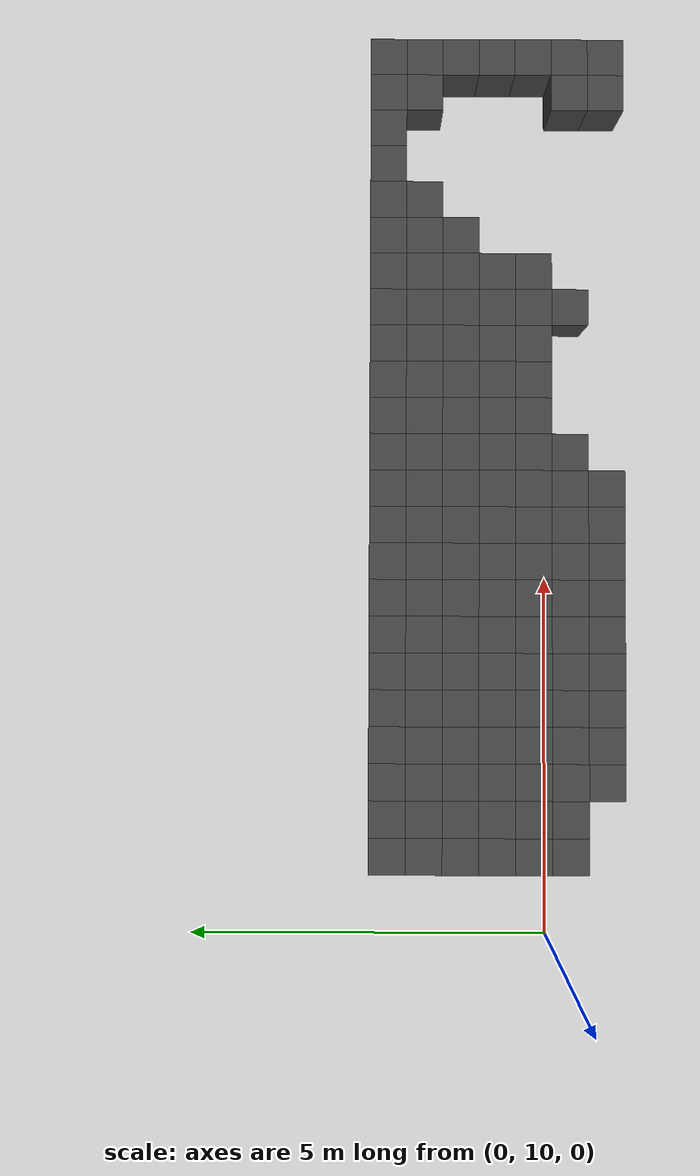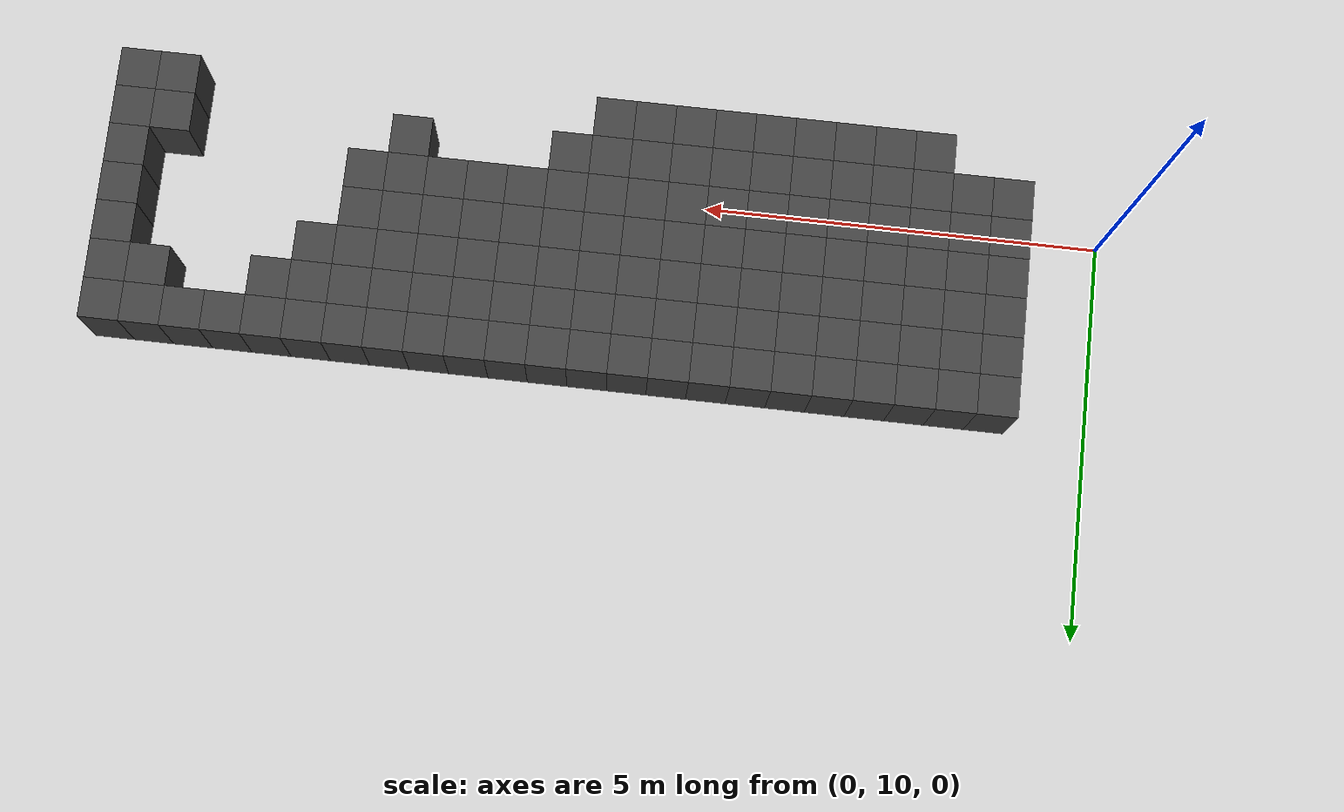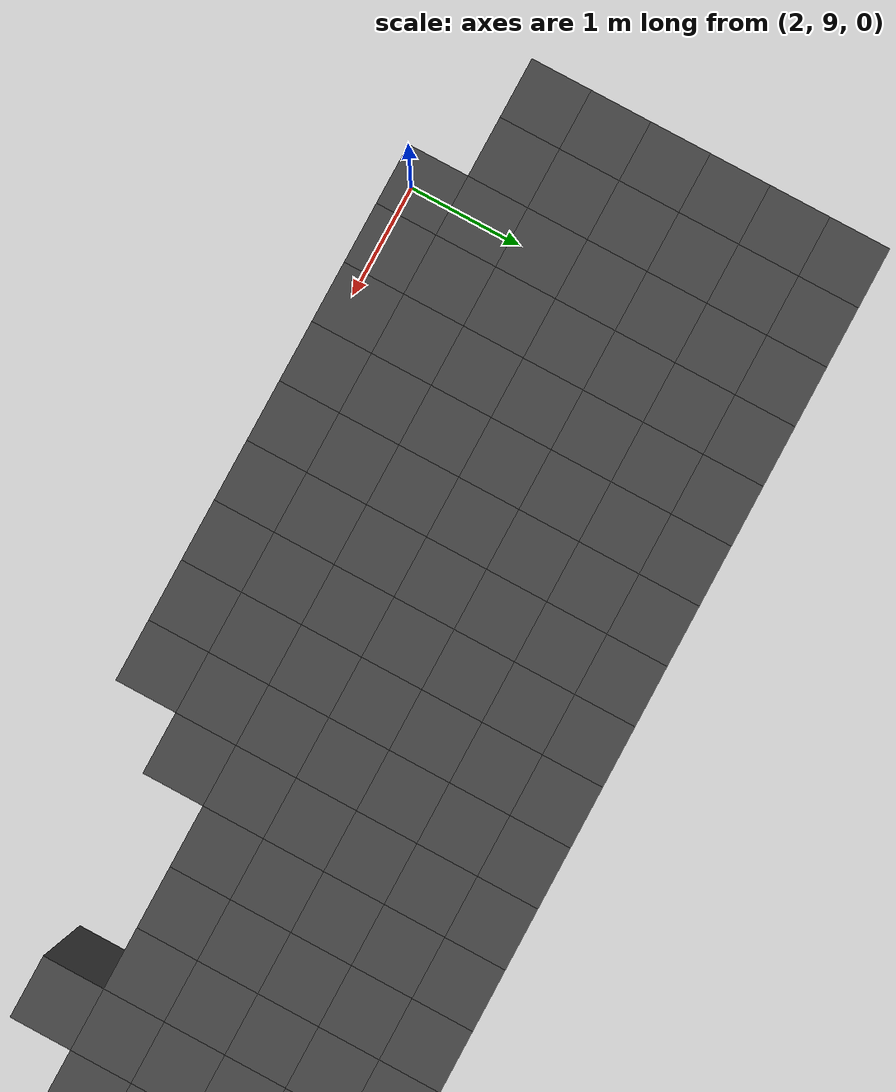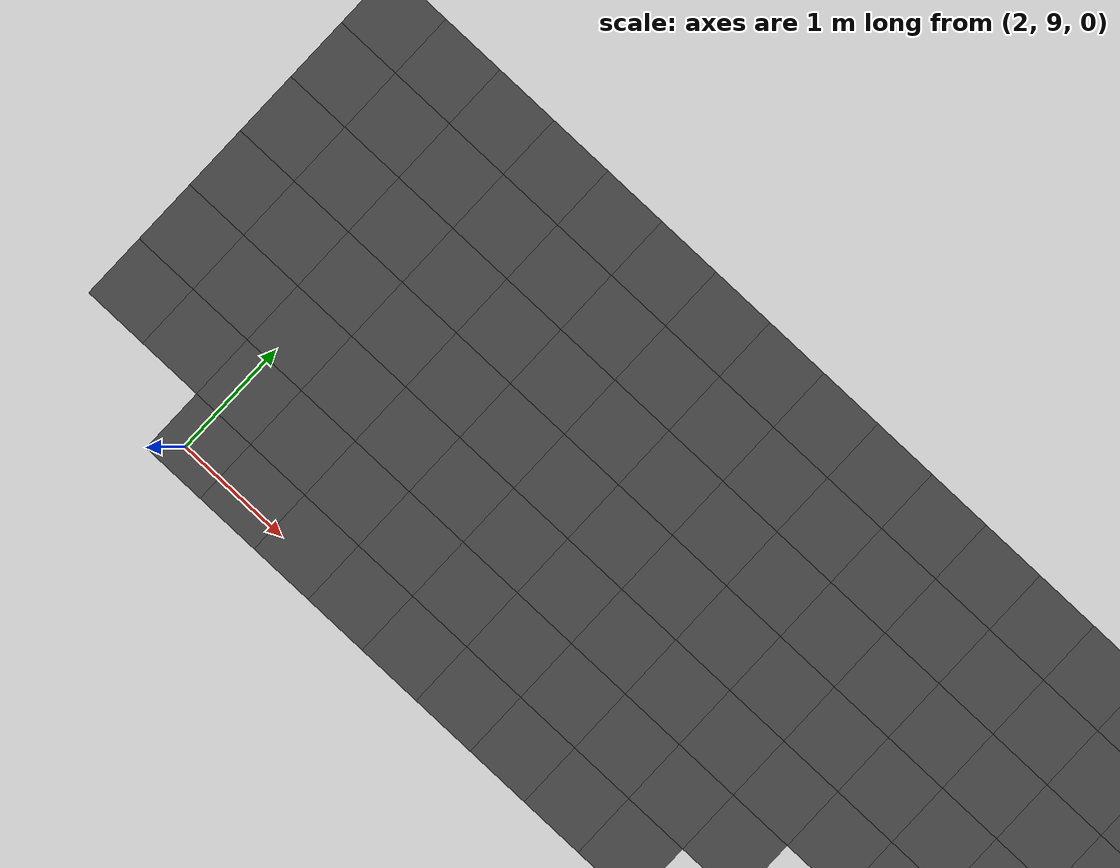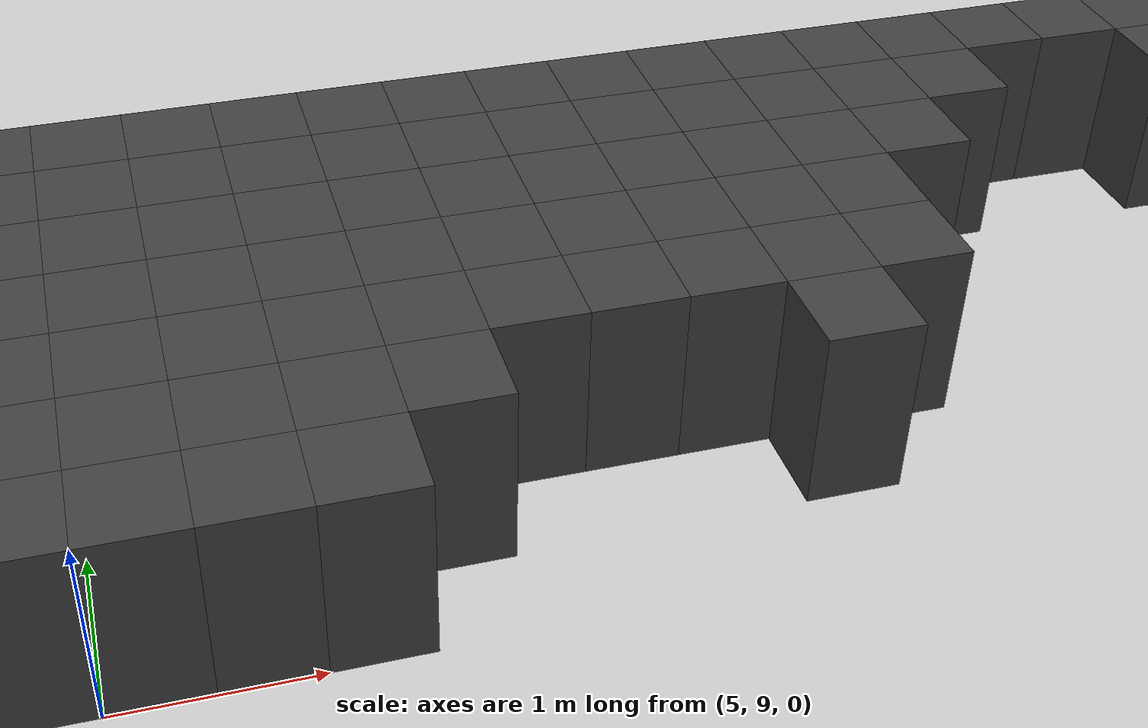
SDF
<sdf version="1.7">
 <world name="map_9687">
  <model name="ground_plane">
   <static>true</static>
   <link name="link">
    <collision name="collision">
     <geometry><plane><normal>0 0 1</normal><size>200 200</size></plane></geometry>
    </collision>
    <visual name="visual">
     <geometry><plane><normal>0 0 1</normal><size>200 200</size></plane></geometry>
     <material><ambient>0.8 0.8 0.8 1</ambient><diffuse>0.8 0.8 0.8 1</diffuse></material>
    </visual>
   </link>
  </model>
  <model name="maze_environment">
   <static>true</static>
   <link name="wall_27">
    <pose>1.250 12.250 0.500 0 0 0</pose>
    <collision name="col"><geometry><box><size>0.5 0.5 1.0</size></box></geometry></collision>
    <visual name="vis">
     <geometry><box><size>0.5 0.5 1.0</size></box></geometry>
     <material><ambient>0.15 0.15 0.15 1</ambient><diffuse>0.25 0.25 0.25 1</diffuse></material>
    </visual>
   </link>
   <link name="wall_28">
    <pose>1.750 12.250 0.500 0 0 0</pose>
    <collision name="col"><geometry><box><size>0.5 0.5 1.0</size></box></geometry></collision>
    <visual name="vis">
     <geometry><box><size>0.5 0.5 1.0</size></box></geometry>
     <material><ambient>0.15 0.15 0.15 1</ambient><diffuse>0.25 0.25 0.25 1</diffuse></material>
    </visual>
   </link>
   <link name="wall_29">
    <pose>2.250 12.250 0.500 0 0 0</pose>
    <collision name="col"><geometry><box><size>0.5 0.5 1.0</size></box></geometry></collision>
    <visual name="vis">
     <geometry><box><size>0.5 0.5 1.0</size></box></geometry>
     <material><ambient>0.15 0.15 0.15 1</ambient><diffuse>0.25 0.25 0.25 1</diffuse></material>
    </visual>
   </link>
   <link name="wall_30">
    <pose>2.750 12.250 0.500 0 0 0</pose>
    <collision name="col"><geometry><box><size>0.5 0.5 1.0</size></box></geometry></collision>
    <visual name="vis">
     <geometry><box><size>0.5 0.5 1.0</size></box></geometry>
     <material><ambient>0.15 0.15 0.15 1</ambient><diffuse>0.25 0.25 0.25 1</diffuse></material>
    </visual>
   </link>
   <link name="wall_31">
    <pose>3.250 12.250 0.500 0 0 0</pose>
    <collision name="col"><geometry><box><size>0.5 0.5 1.0</size></box></geometry></collision>
    <visual name="vis">
     <geometry><box><size>0.5 0.5 1.0</size></box></geometry>
     <material><ambient>0.15 0.15 0.15 1</ambient><diffuse>0.25 0.25 0.25 1</diffuse></material>
    </visual>
   </link>
   <link name="wall_32">
    <pose>3.750 12.250 0.500 0 0 0</pose>
    <collision name="col"><geometry><box><size>0.5 0.5 1.0</size></box></geometry></collision>
    <visual name="vis">
     <geometry><box><size>0.5 0.5 1.0</size></box></geometry>
     <material><ambient>0.15 0.15 0.15 1</ambient><diffuse>0.25 0.25 0.25 1</diffuse></material>
    </visual>
   </link>
   <link name="wall_33">
    <pose>4.250 12.250 0.500 0 0 0</pose>
    <collision name="col"><geometry><box><size>0.5 0.5 1.0</size></box></geometry></collision>
    <visual name="vis">
     <geometry><box><size>0.5 0.5 1.0</size></box></geometry>
     <material><ambient>0.15 0.15 0.15 1</ambient><diffuse>0.25 0.25 0.25 1</diffuse></material>
    </visual>
   </link>
   <link name="wall_34">
    <pose>4.750 12.250 0.500 0 0 0</pose>
    <collision name="col"><geometry><box><size>0.5 0.5 1.0</size></box></geometry></collision>
    <visual name="vis">
     <geometry><box><size>0.5 0.5 1.0</size></box></geometry>
     <material><ambient>0.15 0.15 0.15 1</ambient><diffuse>0.25 0.25 0.25 1</diffuse></material>
    </visual>
   </link>
   <link name="wall_35">
    <pose>5.250 12.250 0.500 0 0 0</pose>
    <collision name="col"><geometry><box><size>0.5 0.5 1.0</size></box></geometry></collision>
    <visual name="vis">
     <geometry><box><size>0.5 0.5 1.0</size></box></geometry>
     <material><ambient>0.15 0.15 0.15 1</ambient><diffuse>0.25 0.25 0.25 1</diffuse></material>
    </visual>
   </link>
   <link name="wall_36">
    <pose>5.750 12.250 0.500 0 0 0</pose>
    <collision name="col"><geometry><box><size>0.5 0.5 1.0</size></box></geometry></collision>
    <visual name="vis">
     <geometry><box><size>0.5 0.5 1.0</size></box></geometry>
     <material><ambient>0.15 0.15 0.15 1</ambient><diffuse>0.25 0.25 0.25 1</diffuse></material>
    </visual>
   </link>
   <link name="wall_37">
    <pose>6.250 12.250 0.500 0 0 0</pose>
    <collision name="col"><geometry><box><size>0.5 0.5 1.0</size></box></geometry></collision>
    <visual name="vis">
     <geometry><box><size>0.5 0.5 1.0</size></box></geometry>
     <material><ambient>0.15 0.15 0.15 1</ambient><diffuse>0.25 0.25 0.25 1</diffuse></material>
    </visual>
   </link>
   <link name="wall_38">
    <pose>6.750 12.250 0.500 0 0 0</pose>
    <collision name="col"><geometry><box><size>0.5 0.5 1.0</size></box></geometry></collision>
    <visual name="vis">
     <geometry><box><size>0.5 0.5 1.0</size></box></geometry>
     <material><ambient>0.15 0.15 0.15 1</ambient><diffuse>0.25 0.25 0.25 1</diffuse></material>
    </visual>
   </link>
   <link name="wall_39">
    <pose>7.250 12.250 0.500 0 0 0</pose>
    <collision name="col"><geometry><box><size>0.5 0.5 1.0</size></box></geometry></collision>
    <visual name="vis">
     <geometry><box><size>0.5 0.5 1.0</size></box></geometry>
     <material><ambient>0.15 0.15 0.15 1</ambient><diffuse>0.25 0.25 0.25 1</diffuse></material>
    </visual>
   </link>
   <link name="wall_40">
    <pose>7.750 12.250 0.500 0 0 0</pose>
    <collision name="col"><geometry><box><size>0.5 0.5 1.0</size></box></geometry></collision>
    <visual name="vis">
     <geometry><box><size>0.5 0.5 1.0</size></box></geometry>
     <material><ambient>0.15 0.15 0.15 1</ambient><diffuse>0.25 0.25 0.25 1</diffuse></material>
    </visual>
   </link>
   <link name="wall_41">
    <pose>8.250 12.250 0.500 0 0 0</pose>
    <collision name="col"><geometry><box><size>0.5 0.5 1.0</size></box></geometry></collision>
    <visual name="vis">
     <geometry><box><size>0.5 0.5 1.0</size></box></geometry>
     <material><ambient>0.15 0.15 0.15 1</ambient><diffuse>0.25 0.25 0.25 1</diffuse></material>
    </visual>
   </link>
   <link name="wall_42">
    <pose>8.750 12.250 0.500 0 0 0</pose>
    <collision name="col"><geometry><box><size>0.5 0.5 1.0</size></box></geometry></collision>
    <visual name="vis">
     <geometry><box><size>0.5 0.5 1.0</size></box></geometry>
     <material><ambient>0.15 0.15 0.15 1</ambient><diffuse>0.25 0.25 0.25 1</diffuse></material>
    </visual>
   </link>
   <link name="wall_43">
    <pose>9.250 12.250 0.500 0 0 0</pose>
    <collision name="col"><geometry><box><size>0.5 0.5 1.0</size></box></geometry></collision>
    <visual name="vis">
     <geometry><box><size>0.5 0.5 1.0</size></box></geometry>
     <material><ambient>0.15 0.15 0.15 1</ambient><diffuse>0.25 0.25 0.25 1</diffuse></material>
    </visual>
   </link>
   <link name="wall_44">
    <pose>9.750 12.250 0.500 0 0 0</pose>
    <collision name="col"><geometry><box><size>0.5 0.5 1.0</size></box></geometry></collision>
    <visual name="vis">
     <geometry><box><size>0.5 0.5 1.0</size></box></geometry>
     <material><ambient>0.15 0.15 0.15 1</ambient><diffuse>0.25 0.25 0.25 1</diffuse></material>
    </visual>
   </link>
   <link name="wall_45">
    <pose>10.250 12.250 0.500 0 0 0</pose>
    <collision name="col"><geometry><box><size>0.5 0.5 1.0</size></box></geometry></collision>
    <visual name="vis">
     <geometry><box><size>0.5 0.5 1.0</size></box></geometry>
     <material><ambient>0.15 0.15 0.15 1</ambient><diffuse>0.25 0.25 0.25 1</diffuse></material>
    </visual>
   </link>
   <link name="wall_46">
    <pose>10.750 12.250 0.500 0 0 0</pose>
    <collision name="col"><geometry><box><size>0.5 0.5 1.0</size></box></geometry></collision>
    <visual name="vis">
     <geometry><box><size>0.5 0.5 1.0</size></box></geometry>
     <material><ambient>0.15 0.15 0.15 1</ambient><diffuse>0.25 0.25 0.25 1</diffuse></material>
    </visual>
   </link>
   <link name="wall_47">
    <pose>11.250 12.250 0.500 0 0 0</pose>
    <collision name="col"><geometry><box><size>0.5 0.5 1.0</size></box></geometry></collision>
    <visual name="vis">
     <geometry><box><size>0.5 0.5 1.0</size></box></geometry>
     <material><ambient>0.15 0.15 0.15 1</ambient><diffuse>0.25 0.25 0.25 1</diffuse></material>
    </visual>
   </link>
   <link name="wall_48">
    <pose>11.750 12.250 0.500 0 0 0</pose>
    <collision name="col"><geometry><box><size>0.5 0.5 1.0</size></box></geometry></collision>
    <visual name="vis">
     <geometry><box><size>0.5 0.5 1.0</size></box></geometry>
     <material><ambient>0.15 0.15 0.15 1</ambient><diffuse>0.25 0.25 0.25 1</diffuse></material>
    </visual>
   </link>
   <link name="wall_49">
    <pose>12.250 12.250 0.500 0 0 0</pose>
    <collision name="col"><geometry><box><size>0.5 0.5 1.0</size></box></geometry></collision>
    <visual name="vis">
     <geometry><box><size>0.5 0.5 1.0</size></box></geometry>
     <material><ambient>0.15 0.15 0.15 1</ambient><diffuse>0.25 0.25 0.25 1</diffuse></material>
    </visual>
   </link>
   <link name="wall_62">
    <pose>1.250 11.750 0.500 0 0 0</pose>
    <collision name="col"><geometry><box><size>0.5 0.5 1.0</size></box></geometry></collision>
    <visual name="vis">
     <geometry><box><size>0.5 0.5 1.0</size></box></geometry>
     <material><ambient>0.15 0.15 0.15 1</ambient><diffuse>0.25 0.25 0.25 1</diffuse></material>
    </visual>
   </link>
   <link name="wall_63">
    <pose>1.750 11.750 0.500 0 0 0</pose>
    <collision name="col"><geometry><box><size>0.5 0.5 1.0</size></box></geometry></collision>
    <visual name="vis">
     <geometry><box><size>0.5 0.5 1.0</size></box></geometry>
     <material><ambient>0.15 0.15 0.15 1</ambient><diffuse>0.25 0.25 0.25 1</diffuse></material>
    </visual>
   </link>
   <link name="wall_64">
    <pose>2.250 11.750 0.500 0 0 0</pose>
    <collision name="col"><geometry><box><size>0.5 0.5 1.0</size></box></geometry></collision>
    <visual name="vis">
     <geometry><box><size>0.5 0.5 1.0</size></box></geometry>
     <material><ambient>0.15 0.15 0.15 1</ambient><diffuse>0.25 0.25 0.25 1</diffuse></material>
    </visual>
   </link>
   <link name="wall_65">
    <pose>2.750 11.750 0.500 0 0 0</pose>
    <collision name="col"><geometry><box><size>0.5 0.5 1.0</size></box></geometry></collision>
    <visual name="vis">
     <geometry><box><size>0.5 0.5 1.0</size></box></geometry>
     <material><ambient>0.15 0.15 0.15 1</ambient><diffuse>0.25 0.25 0.25 1</diffuse></material>
    </visual>
   </link>
   <link name="wall_66">
    <pose>3.250 11.750 0.500 0 0 0</pose>
    <collision name="col"><geometry><box><size>0.5 0.5 1.0</size></box></geometry></collision>
    <visual name="vis">
     <geometry><box><size>0.5 0.5 1.0</size></box></geometry>
     <material><ambient>0.15 0.15 0.15 1</ambient><diffuse>0.25 0.25 0.25 1</diffuse></material>
    </visual>
   </link>
   <link name="wall_67">
    <pose>3.750 11.750 0.500 0 0 0</pose>
    <collision name="col"><geometry><box><size>0.5 0.5 1.0</size></box></geometry></collision>
    <visual name="vis">
     <geometry><box><size>0.5 0.5 1.0</size></box></geometry>
     <material><ambient>0.15 0.15 0.15 1</ambient><diffuse>0.25 0.25 0.25 1</diffuse></material>
    </visual>
   </link>
   <link name="wall_68">
    <pose>4.250 11.750 0.500 0 0 0</pose>
    <collision name="col"><geometry><box><size>0.5 0.5 1.0</size></box></geometry></collision>
    <visual name="vis">
     <geometry><box><size>0.5 0.5 1.0</size></box></geometry>
     <material><ambient>0.15 0.15 0.15 1</ambient><diffuse>0.25 0.25 0.25 1</diffuse></material>
    </visual>
   </link>
   <link name="wall_69">
    <pose>4.750 11.750 0.500 0 0 0</pose>
    <collision name="col"><geometry><box><size>0.5 0.5 1.0</size></box></geometry></collision>
    <visual name="vis">
     <geometry><box><size>0.5 0.5 1.0</size></box></geometry>
     <material><ambient>0.15 0.15 0.15 1</ambient><diffuse>0.25 0.25 0.25 1</diffuse></material>
    </visual>
   </link>
   <link name="wall_70">
    <pose>5.250 11.750 0.500 0 0 0</pose>
    <collision name="col"><geometry><box><size>0.5 0.5 1.0</size></box></geometry></collision>
    <visual name="vis">
     <geometry><box><size>0.5 0.5 1.0</size></box></geometry>
     <material><ambient>0.15 0.15 0.15 1</ambient><diffuse>0.25 0.25 0.25 1</diffuse></material>
    </visual>
   </link>
   <link name="wall_71">
    <pose>5.750 11.750 0.500 0 0 0</pose>
    <collision name="col"><geometry><box><size>0.5 0.5 1.0</size></box></geometry></collision>
    <visual name="vis">
     <geometry><box><size>0.5 0.5 1.0</size></box></geometry>
     <material><ambient>0.15 0.15 0.15 1</ambient><diffuse>0.25 0.25 0.25 1</diffuse></material>
    </visual>
   </link>
   <link name="wall_72">
    <pose>6.250 11.750 0.500 0 0 0</pose>
    <collision name="col"><geometry><box><size>0.5 0.5 1.0</size></box></geometry></collision>
    <visual name="vis">
     <geometry><box><size>0.5 0.5 1.0</size></box></geometry>
     <material><ambient>0.15 0.15 0.15 1</ambient><diffuse>0.25 0.25 0.25 1</diffuse></material>
    </visual>
   </link>
   <link name="wall_73">
    <pose>6.750 11.750 0.500 0 0 0</pose>
    <collision name="col"><geometry><box><size>0.5 0.5 1.0</size></box></geometry></collision>
    <visual name="vis">
     <geometry><box><size>0.5 0.5 1.0</size></box></geometry>
     <material><ambient>0.15 0.15 0.15 1</ambient><diffuse>0.25 0.25 0.25 1</diffuse></material>
    </visual>
   </link>
   <link name="wall_74">
    <pose>7.250 11.750 0.500 0 0 0</pose>
    <collision name="col"><geometry><box><size>0.5 0.5 1.0</size></box></geometry></collision>
    <visual name="vis">
     <geometry><box><size>0.5 0.5 1.0</size></box></geometry>
     <material><ambient>0.15 0.15 0.15 1</ambient><diffuse>0.25 0.25 0.25 1</diffuse></material>
    </visual>
   </link>
   <link name="wall_75">
    <pose>7.750 11.750 0.500 0 0 0</pose>
    <collision name="col"><geometry><box><size>0.5 0.5 1.0</size></box></geometry></collision>
    <visual name="vis">
     <geometry><box><size>0.5 0.5 1.0</size></box></geometry>
     <material><ambient>0.15 0.15 0.15 1</ambient><diffuse>0.25 0.25 0.25 1</diffuse></material>
    </visual>
   </link>
   <link name="wall_76">
    <pose>8.250 11.750 0.500 0 0 0</pose>
    <collision name="col"><geometry><box><size>0.5 0.5 1.0</size></box></geometry></collision>
    <visual name="vis">
     <geometry><box><size>0.5 0.5 1.0</size></box></geometry>
     <material><ambient>0.15 0.15 0.15 1</ambient><diffuse>0.25 0.25 0.25 1</diffuse></material>
    </visual>
   </link>
   <link name="wall_77">
    <pose>8.750 11.750 0.500 0 0 0</pose>
    <collision name="col"><geometry><box><size>0.5 0.5 1.0</size></box></geometry></collision>
    <visual name="vis">
     <geometry><box><size>0.5 0.5 1.0</size></box></geometry>
     <material><ambient>0.15 0.15 0.15 1</ambient><diffuse>0.25 0.25 0.25 1</diffuse></material>
    </visual>
   </link>
   <link name="wall_78">
    <pose>9.250 11.750 0.500 0 0 0</pose>
    <collision name="col"><geometry><box><size>0.5 0.5 1.0</size></box></geometry></collision>
    <visual name="vis">
     <geometry><box><size>0.5 0.5 1.0</size></box></geometry>
     <material><ambient>0.15 0.15 0.15 1</ambient><diffuse>0.25 0.25 0.25 1</diffuse></material>
    </visual>
   </link>
   <link name="wall_79">
    <pose>9.750 11.750 0.500 0 0 0</pose>
    <collision name="col"><geometry><box><size>0.5 0.5 1.0</size></box></geometry></collision>
    <visual name="vis">
     <geometry><box><size>0.5 0.5 1.0</size></box></geometry>
     <material><ambient>0.15 0.15 0.15 1</ambient><diffuse>0.25 0.25 0.25 1</diffuse></material>
    </visual>
   </link>
   <link name="wall_80">
    <pose>10.250 11.750 0.500 0 0 0</pose>
    <collision name="col"><geometry><box><size>0.5 0.5 1.0</size></box></geometry></collision>
    <visual name="vis">
     <geometry><box><size>0.5 0.5 1.0</size></box></geometry>
     <material><ambient>0.15 0.15 0.15 1</ambient><diffuse>0.25 0.25 0.25 1</diffuse></material>
    </visual>
   </link>
   <link name="wall_81">
    <pose>11.750 11.750 0.500 0 0 0</pose>
    <collision name="col"><geometry><box><size>0.5 0.5 1.0</size></box></geometry></collision>
    <visual name="vis">
     <geometry><box><size>0.5 0.5 1.0</size></box></geometry>
     <material><ambient>0.15 0.15 0.15 1</ambient><diffuse>0.25 0.25 0.25 1</diffuse></material>
    </visual>
   </link>
   <link name="wall_82">
    <pose>12.250 11.750 0.500 0 0 0</pose>
    <collision name="col"><geometry><box><size>0.5 0.5 1.0</size></box></geometry></collision>
    <visual name="vis">
     <geometry><box><size>0.5 0.5 1.0</size></box></geometry>
     <material><ambient>0.15 0.15 0.15 1</ambient><diffuse>0.25 0.25 0.25 1</diffuse></material>
    </visual>
   </link>
   <link name="wall_90">
    <pose>1.250 11.250 0.500 0 0 0</pose>
    <collision name="col"><geometry><box><size>0.5 0.5 1.0</size></box></geometry></collision>
    <visual name="vis">
     <geometry><box><size>0.5 0.5 1.0</size></box></geometry>
     <material><ambient>0.15 0.15 0.15 1</ambient><diffuse>0.25 0.25 0.25 1</diffuse></material>
    </visual>
   </link>
   <link name="wall_91">
    <pose>1.750 11.250 0.500 0 0 0</pose>
    <collision name="col"><geometry><box><size>0.5 0.5 1.0</size></box></geometry></collision>
    <visual name="vis">
     <geometry><box><size>0.5 0.5 1.0</size></box></geometry>
     <material><ambient>0.15 0.15 0.15 1</ambient><diffuse>0.25 0.25 0.25 1</diffuse></material>
    </visual>
   </link>
   <link name="wall_92">
    <pose>2.250 11.250 0.500 0 0 0</pose>
    <collision name="col"><geometry><box><size>0.5 0.5 1.0</size></box></geometry></collision>
    <visual name="vis">
     <geometry><box><size>0.5 0.5 1.0</size></box></geometry>
     <material><ambient>0.15 0.15 0.15 1</ambient><diffuse>0.25 0.25 0.25 1</diffuse></material>
    </visual>
   </link>
   <link name="wall_93">
    <pose>2.750 11.250 0.500 0 0 0</pose>
    <collision name="col"><geometry><box><size>0.5 0.5 1.0</size></box></geometry></collision>
    <visual name="vis">
     <geometry><box><size>0.5 0.5 1.0</size></box></geometry>
     <material><ambient>0.15 0.15 0.15 1</ambient><diffuse>0.25 0.25 0.25 1</diffuse></material>
    </visual>
   </link>
   <link name="wall_94">
    <pose>3.250 11.250 0.500 0 0 0</pose>
    <collision name="col"><geometry><box><size>0.5 0.5 1.0</size></box></geometry></collision>
    <visual name="vis">
     <geometry><box><size>0.5 0.5 1.0</size></box></geometry>
     <material><ambient>0.15 0.15 0.15 1</ambient><diffuse>0.25 0.25 0.25 1</diffuse></material>
    </visual>
   </link>
   <link name="wall_95">
    <pose>3.750 11.250 0.500 0 0 0</pose>
    <collision name="col"><geometry><box><size>0.5 0.5 1.0</size></box></geometry></collision>
    <visual name="vis">
     <geometry><box><size>0.5 0.5 1.0</size></box></geometry>
     <material><ambient>0.15 0.15 0.15 1</ambient><diffuse>0.25 0.25 0.25 1</diffuse></material>
    </visual>
   </link>
   <link name="wall_96">
    <pose>4.250 11.250 0.500 0 0 0</pose>
    <collision name="col"><geometry><box><size>0.5 0.5 1.0</size></box></geometry></collision>
    <visual name="vis">
     <geometry><box><size>0.5 0.5 1.0</size></box></geometry>
     <material><ambient>0.15 0.15 0.15 1</ambient><diffuse>0.25 0.25 0.25 1</diffuse></material>
    </visual>
   </link>
   <link name="wall_97">
    <pose>4.750 11.250 0.500 0 0 0</pose>
    <collision name="col"><geometry><box><size>0.5 0.5 1.0</size></box></geometry></collision>
    <visual name="vis">
     <geometry><box><size>0.5 0.5 1.0</size></box></geometry>
     <material><ambient>0.15 0.15 0.15 1</ambient><diffuse>0.25 0.25 0.25 1</diffuse></material>
    </visual>
   </link>
   <link name="wall_98">
    <pose>5.250 11.250 0.500 0 0 0</pose>
    <collision name="col"><geometry><box><size>0.5 0.5 1.0</size></box></geometry></collision>
    <visual name="vis">
     <geometry><box><size>0.5 0.5 1.0</size></box></geometry>
     <material><ambient>0.15 0.15 0.15 1</ambient><diffuse>0.25 0.25 0.25 1</diffuse></material>
    </visual>
   </link>
   <link name="wall_99">
    <pose>5.750 11.250 0.500 0 0 0</pose>
    <collision name="col"><geometry><box><size>0.5 0.5 1.0</size></box></geometry></collision>
    <visual name="vis">
     <geometry><box><size>0.5 0.5 1.0</size></box></geometry>
     <material><ambient>0.15 0.15 0.15 1</ambient><diffuse>0.25 0.25 0.25 1</diffuse></material>
    </visual>
   </link>
   <link name="wall_100">
    <pose>6.250 11.250 0.500 0 0 0</pose>
    <collision name="col"><geometry><box><size>0.5 0.5 1.0</size></box></geometry></collision>
    <visual name="vis">
     <geometry><box><size>0.5 0.5 1.0</size></box></geometry>
     <material><ambient>0.15 0.15 0.15 1</ambient><diffuse>0.25 0.25 0.25 1</diffuse></material>
    </visual>
   </link>
   <link name="wall_101">
    <pose>6.750 11.250 0.500 0 0 0</pose>
    <collision name="col"><geometry><box><size>0.5 0.5 1.0</size></box></geometry></collision>
    <visual name="vis">
     <geometry><box><size>0.5 0.5 1.0</size></box></geometry>
     <material><ambient>0.15 0.15 0.15 1</ambient><diffuse>0.25 0.25 0.25 1</diffuse></material>
    </visual>
   </link>
   <link name="wall_102">
    <pose>7.250 11.250 0.500 0 0 0</pose>
    <collision name="col"><geometry><box><size>0.5 0.5 1.0</size></box></geometry></collision>
    <visual name="vis">
     <geometry><box><size>0.5 0.5 1.0</size></box></geometry>
     <material><ambient>0.15 0.15 0.15 1</ambient><diffuse>0.25 0.25 0.25 1</diffuse></material>
    </visual>
   </link>
   <link name="wall_103">
    <pose>7.750 11.250 0.500 0 0 0</pose>
    <collision name="col"><geometry><box><size>0.5 0.5 1.0</size></box></geometry></collision>
    <visual name="vis">
     <geometry><box><size>0.5 0.5 1.0</size></box></geometry>
     <material><ambient>0.15 0.15 0.15 1</ambient><diffuse>0.25 0.25 0.25 1</diffuse></material>
    </visual>
   </link>
   <link name="wall_104">
    <pose>8.250 11.250 0.500 0 0 0</pose>
    <collision name="col"><geometry><box><size>0.5 0.5 1.0</size></box></geometry></collision>
    <visual name="vis">
     <geometry><box><size>0.5 0.5 1.0</size></box></geometry>
     <material><ambient>0.15 0.15 0.15 1</ambient><diffuse>0.25 0.25 0.25 1</diffuse></material>
    </visual>
   </link>
   <link name="wall_105">
    <pose>8.750 11.250 0.500 0 0 0</pose>
    <collision name="col"><geometry><box><size>0.5 0.5 1.0</size></box></geometry></collision>
    <visual name="vis">
     <geometry><box><size>0.5 0.5 1.0</size></box></geometry>
     <material><ambient>0.15 0.15 0.15 1</ambient><diffuse>0.25 0.25 0.25 1</diffuse></material>
    </visual>
   </link>
   <link name="wall_106">
    <pose>9.250 11.250 0.500 0 0 0</pose>
    <collision name="col"><geometry><box><size>0.5 0.5 1.0</size></box></geometry></collision>
    <visual name="vis">
     <geometry><box><size>0.5 0.5 1.0</size></box></geometry>
     <material><ambient>0.15 0.15 0.15 1</ambient><diffuse>0.25 0.25 0.25 1</diffuse></material>
    </visual>
   </link>
   <link name="wall_107">
    <pose>9.750 11.250 0.500 0 0 0</pose>
    <collision name="col"><geometry><box><size>0.5 0.5 1.0</size></box></geometry></collision>
    <visual name="vis">
     <geometry><box><size>0.5 0.5 1.0</size></box></geometry>
     <material><ambient>0.15 0.15 0.15 1</ambient><diffuse>0.25 0.25 0.25 1</diffuse></material>
    </visual>
   </link>
   <link name="wall_108">
    <pose>12.250 11.250 0.500 0 0 0</pose>
    <collision name="col"><geometry><box><size>0.5 0.5 1.0</size></box></geometry></collision>
    <visual name="vis">
     <geometry><box><size>0.5 0.5 1.0</size></box></geometry>
     <material><ambient>0.15 0.15 0.15 1</ambient><diffuse>0.25 0.25 0.25 1</diffuse></material>
    </visual>
   </link>
   <link name="wall_113">
    <pose>1.250 10.750 0.500 0 0 0</pose>
    <collision name="col"><geometry><box><size>0.5 0.5 1.0</size></box></geometry></collision>
    <visual name="vis">
     <geometry><box><size>0.5 0.5 1.0</size></box></geometry>
     <material><ambient>0.15 0.15 0.15 1</ambient><diffuse>0.25 0.25 0.25 1</diffuse></material>
    </visual>
   </link>
   <link name="wall_114">
    <pose>1.750 10.750 0.500 0 0 0</pose>
    <collision name="col"><geometry><box><size>0.5 0.5 1.0</size></box></geometry></collision>
    <visual name="vis">
     <geometry><box><size>0.5 0.5 1.0</size></box></geometry>
     <material><ambient>0.15 0.15 0.15 1</ambient><diffuse>0.25 0.25 0.25 1</diffuse></material>
    </visual>
   </link>
   <link name="wall_115">
    <pose>2.250 10.750 0.500 0 0 0</pose>
    <collision name="col"><geometry><box><size>0.5 0.5 1.0</size></box></geometry></collision>
    <visual name="vis">
     <geometry><box><size>0.5 0.5 1.0</size></box></geometry>
     <material><ambient>0.15 0.15 0.15 1</ambient><diffuse>0.25 0.25 0.25 1</diffuse></material>
    </visual>
   </link>
   <link name="wall_116">
    <pose>2.750 10.750 0.500 0 0 0</pose>
    <collision name="col"><geometry><box><size>0.5 0.5 1.0</size></box></geometry></collision>
    <visual name="vis">
     <geometry><box><size>0.5 0.5 1.0</size></box></geometry>
     <material><ambient>0.15 0.15 0.15 1</ambient><diffuse>0.25 0.25 0.25 1</diffuse></material>
    </visual>
   </link>
   <link name="wall_117">
    <pose>3.250 10.750 0.500 0 0 0</pose>
    <collision name="col"><geometry><box><size>0.5 0.5 1.0</size></box></geometry></collision>
    <visual name="vis">
     <geometry><box><size>0.5 0.5 1.0</size></box></geometry>
     <material><ambient>0.15 0.15 0.15 1</ambient><diffuse>0.25 0.25 0.25 1</diffuse></material>
    </visual>
   </link>
   <link name="wall_118">
    <pose>3.750 10.750 0.500 0 0 0</pose>
    <collision name="col"><geometry><box><size>0.5 0.5 1.0</size></box></geometry></collision>
    <visual name="vis">
     <geometry><box><size>0.5 0.5 1.0</size></box></geometry>
     <material><ambient>0.15 0.15 0.15 1</ambient><diffuse>0.25 0.25 0.25 1</diffuse></material>
    </visual>
   </link>
   <link name="wall_119">
    <pose>4.250 10.750 0.500 0 0 0</pose>
    <collision name="col"><geometry><box><size>0.5 0.5 1.0</size></box></geometry></collision>
    <visual name="vis">
     <geometry><box><size>0.5 0.5 1.0</size></box></geometry>
     <material><ambient>0.15 0.15 0.15 1</ambient><diffuse>0.25 0.25 0.25 1</diffuse></material>
    </visual>
   </link>
   <link name="wall_120">
    <pose>4.750 10.750 0.500 0 0 0</pose>
    <collision name="col"><geometry><box><size>0.5 0.5 1.0</size></box></geometry></collision>
    <visual name="vis">
     <geometry><box><size>0.5 0.5 1.0</size></box></geometry>
     <material><ambient>0.15 0.15 0.15 1</ambient><diffuse>0.25 0.25 0.25 1</diffuse></material>
    </visual>
   </link>
   <link name="wall_121">
    <pose>5.250 10.750 0.500 0 0 0</pose>
    <collision name="col"><geometry><box><size>0.5 0.5 1.0</size></box></geometry></collision>
    <visual name="vis">
     <geometry><box><size>0.5 0.5 1.0</size></box></geometry>
     <material><ambient>0.15 0.15 0.15 1</ambient><diffuse>0.25 0.25 0.25 1</diffuse></material>
    </visual>
   </link>
   <link name="wall_122">
    <pose>5.750 10.750 0.500 0 0 0</pose>
    <collision name="col"><geometry><box><size>0.5 0.5 1.0</size></box></geometry></collision>
    <visual name="vis">
     <geometry><box><size>0.5 0.5 1.0</size></box></geometry>
     <material><ambient>0.15 0.15 0.15 1</ambient><diffuse>0.25 0.25 0.25 1</diffuse></material>
    </visual>
   </link>
   <link name="wall_123">
    <pose>6.250 10.750 0.500 0 0 0</pose>
    <collision name="col"><geometry><box><size>0.5 0.5 1.0</size></box></geometry></collision>
    <visual name="vis">
     <geometry><box><size>0.5 0.5 1.0</size></box></geometry>
     <material><ambient>0.15 0.15 0.15 1</ambient><diffuse>0.25 0.25 0.25 1</diffuse></material>
    </visual>
   </link>
   <link name="wall_124">
    <pose>6.750 10.750 0.500 0 0 0</pose>
    <collision name="col"><geometry><box><size>0.5 0.5 1.0</size></box></geometry></collision>
    <visual name="vis">
     <geometry><box><size>0.5 0.5 1.0</size></box></geometry>
     <material><ambient>0.15 0.15 0.15 1</ambient><diffuse>0.25 0.25 0.25 1</diffuse></material>
    </visual>
   </link>
   <link name="wall_125">
    <pose>7.250 10.750 0.500 0 0 0</pose>
    <collision name="col"><geometry><box><size>0.5 0.5 1.0</size></box></geometry></collision>
    <visual name="vis">
     <geometry><box><size>0.5 0.5 1.0</size></box></geometry>
     <material><ambient>0.15 0.15 0.15 1</ambient><diffuse>0.25 0.25 0.25 1</diffuse></material>
    </visual>
   </link>
   <link name="wall_126">
    <pose>7.750 10.750 0.500 0 0 0</pose>
    <collision name="col"><geometry><box><size>0.5 0.5 1.0</size></box></geometry></collision>
    <visual name="vis">
     <geometry><box><size>0.5 0.5 1.0</size></box></geometry>
     <material><ambient>0.15 0.15 0.15 1</ambient><diffuse>0.25 0.25 0.25 1</diffuse></material>
    </visual>
   </link>
   <link name="wall_127">
    <pose>8.250 10.750 0.500 0 0 0</pose>
    <collision name="col"><geometry><box><size>0.5 0.5 1.0</size></box></geometry></collision>
    <visual name="vis">
     <geometry><box><size>0.5 0.5 1.0</size></box></geometry>
     <material><ambient>0.15 0.15 0.15 1</ambient><diffuse>0.25 0.25 0.25 1</diffuse></material>
    </visual>
   </link>
   <link name="wall_128">
    <pose>8.750 10.750 0.500 0 0 0</pose>
    <collision name="col"><geometry><box><size>0.5 0.5 1.0</size></box></geometry></collision>
    <visual name="vis">
     <geometry><box><size>0.5 0.5 1.0</size></box></geometry>
     <material><ambient>0.15 0.15 0.15 1</ambient><diffuse>0.25 0.25 0.25 1</diffuse></material>
    </visual>
   </link>
   <link name="wall_129">
    <pose>9.250 10.750 0.500 0 0 0</pose>
    <collision name="col"><geometry><box><size>0.5 0.5 1.0</size></box></geometry></collision>
    <visual name="vis">
     <geometry><box><size>0.5 0.5 1.0</size></box></geometry>
     <material><ambient>0.15 0.15 0.15 1</ambient><diffuse>0.25 0.25 0.25 1</diffuse></material>
    </visual>
   </link>
   <link name="wall_130">
    <pose>12.250 10.750 0.500 0 0 0</pose>
    <collision name="col"><geometry><box><size>0.5 0.5 1.0</size></box></geometry></collision>
    <visual name="vis">
     <geometry><box><size>0.5 0.5 1.0</size></box></geometry>
     <material><ambient>0.15 0.15 0.15 1</ambient><diffuse>0.25 0.25 0.25 1</diffuse></material>
    </visual>
   </link>
   <link name="wall_136">
    <pose>1.250 10.250 0.500 0 0 0</pose>
    <collision name="col"><geometry><box><size>0.5 0.5 1.0</size></box></geometry></collision>
    <visual name="vis">
     <geometry><box><size>0.5 0.5 1.0</size></box></geometry>
     <material><ambient>0.15 0.15 0.15 1</ambient><diffuse>0.25 0.25 0.25 1</diffuse></material>
    </visual>
   </link>
   <link name="wall_137">
    <pose>1.750 10.250 0.500 0 0 0</pose>
    <collision name="col"><geometry><box><size>0.5 0.5 1.0</size></box></geometry></collision>
    <visual name="vis">
     <geometry><box><size>0.5 0.5 1.0</size></box></geometry>
     <material><ambient>0.15 0.15 0.15 1</ambient><diffuse>0.25 0.25 0.25 1</diffuse></material>
    </visual>
   </link>
   <link name="wall_138">
    <pose>2.250 10.250 0.500 0 0 0</pose>
    <collision name="col"><geometry><box><size>0.5 0.5 1.0</size></box></geometry></collision>
    <visual name="vis">
     <geometry><box><size>0.5 0.5 1.0</size></box></geometry>
     <material><ambient>0.15 0.15 0.15 1</ambient><diffuse>0.25 0.25 0.25 1</diffuse></material>
    </visual>
   </link>
   <link name="wall_139">
    <pose>2.750 10.250 0.500 0 0 0</pose>
    <collision name="col"><geometry><box><size>0.5 0.5 1.0</size></box></geometry></collision>
    <visual name="vis">
     <geometry><box><size>0.5 0.5 1.0</size></box></geometry>
     <material><ambient>0.15 0.15 0.15 1</ambient><diffuse>0.25 0.25 0.25 1</diffuse></material>
    </visual>
   </link>
   <link name="wall_140">
    <pose>3.250 10.250 0.500 0 0 0</pose>
    <collision name="col"><geometry><box><size>0.5 0.5 1.0</size></box></geometry></collision>
    <visual name="vis">
     <geometry><box><size>0.5 0.5 1.0</size></box></geometry>
     <material><ambient>0.15 0.15 0.15 1</ambient><diffuse>0.25 0.25 0.25 1</diffuse></material>
    </visual>
   </link>
   <link name="wall_141">
    <pose>3.750 10.250 0.500 0 0 0</pose>
    <collision name="col"><geometry><box><size>0.5 0.5 1.0</size></box></geometry></collision>
    <visual name="vis">
     <geometry><box><size>0.5 0.5 1.0</size></box></geometry>
     <material><ambient>0.15 0.15 0.15 1</ambient><diffuse>0.25 0.25 0.25 1</diffuse></material>
    </visual>
   </link>
   <link name="wall_142">
    <pose>4.250 10.250 0.500 0 0 0</pose>
    <collision name="col"><geometry><box><size>0.5 0.5 1.0</size></box></geometry></collision>
    <visual name="vis">
     <geometry><box><size>0.5 0.5 1.0</size></box></geometry>
     <material><ambient>0.15 0.15 0.15 1</ambient><diffuse>0.25 0.25 0.25 1</diffuse></material>
    </visual>
   </link>
   <link name="wall_143">
    <pose>4.750 10.250 0.500 0 0 0</pose>
    <collision name="col"><geometry><box><size>0.5 0.5 1.0</size></box></geometry></collision>
    <visual name="vis">
     <geometry><box><size>0.5 0.5 1.0</size></box></geometry>
     <material><ambient>0.15 0.15 0.15 1</ambient><diffuse>0.25 0.25 0.25 1</diffuse></material>
    </visual>
   </link>
   <link name="wall_144">
    <pose>5.250 10.250 0.500 0 0 0</pose>
    <collision name="col"><geometry><box><size>0.5 0.5 1.0</size></box></geometry></collision>
    <visual name="vis">
     <geometry><box><size>0.5 0.5 1.0</size></box></geometry>
     <material><ambient>0.15 0.15 0.15 1</ambient><diffuse>0.25 0.25 0.25 1</diffuse></material>
    </visual>
   </link>
   <link name="wall_145">
    <pose>5.750 10.250 0.500 0 0 0</pose>
    <collision name="col"><geometry><box><size>0.5 0.5 1.0</size></box></geometry></collision>
    <visual name="vis">
     <geometry><box><size>0.5 0.5 1.0</size></box></geometry>
     <material><ambient>0.15 0.15 0.15 1</ambient><diffuse>0.25 0.25 0.25 1</diffuse></material>
    </visual>
   </link>
   <link name="wall_146">
    <pose>6.250 10.250 0.500 0 0 0</pose>
    <collision name="col"><geometry><box><size>0.5 0.5 1.0</size></box></geometry></collision>
    <visual name="vis">
     <geometry><box><size>0.5 0.5 1.0</size></box></geometry>
     <material><ambient>0.15 0.15 0.15 1</ambient><diffuse>0.25 0.25 0.25 1</diffuse></material>
    </visual>
   </link>
   <link name="wall_147">
    <pose>6.750 10.250 0.500 0 0 0</pose>
    <collision name="col"><geometry><box><size>0.5 0.5 1.0</size></box></geometry></collision>
    <visual name="vis">
     <geometry><box><size>0.5 0.5 1.0</size></box></geometry>
     <material><ambient>0.15 0.15 0.15 1</ambient><diffuse>0.25 0.25 0.25 1</diffuse></material>
    </visual>
   </link>
   <link name="wall_148">
    <pose>7.250 10.250 0.500 0 0 0</pose>
    <collision name="col"><geometry><box><size>0.5 0.5 1.0</size></box></geometry></collision>
    <visual name="vis">
     <geometry><box><size>0.5 0.5 1.0</size></box></geometry>
     <material><ambient>0.15 0.15 0.15 1</ambient><diffuse>0.25 0.25 0.25 1</diffuse></material>
    </visual>
   </link>
   <link name="wall_149">
    <pose>7.750 10.250 0.500 0 0 0</pose>
    <collision name="col"><geometry><box><size>0.5 0.5 1.0</size></box></geometry></collision>
    <visual name="vis">
     <geometry><box><size>0.5 0.5 1.0</size></box></geometry>
     <material><ambient>0.15 0.15 0.15 1</ambient><diffuse>0.25 0.25 0.25 1</diffuse></material>
    </visual>
   </link>
   <link name="wall_150">
    <pose>8.250 10.250 0.500 0 0 0</pose>
    <collision name="col"><geometry><box><size>0.5 0.5 1.0</size></box></geometry></collision>
    <visual name="vis">
     <geometry><box><size>0.5 0.5 1.0</size></box></geometry>
     <material><ambient>0.15 0.15 0.15 1</ambient><diffuse>0.25 0.25 0.25 1</diffuse></material>
    </visual>
   </link>
   <link name="wall_151">
    <pose>8.750 10.250 0.500 0 0 0</pose>
    <collision name="col"><geometry><box><size>0.5 0.5 1.0</size></box></geometry></collision>
    <visual name="vis">
     <geometry><box><size>0.5 0.5 1.0</size></box></geometry>
     <material><ambient>0.15 0.15 0.15 1</ambient><diffuse>0.25 0.25 0.25 1</diffuse></material>
    </visual>
   </link>
   <link name="wall_152">
    <pose>9.250 10.250 0.500 0 0 0</pose>
    <collision name="col"><geometry><box><size>0.5 0.5 1.0</size></box></geometry></collision>
    <visual name="vis">
     <geometry><box><size>0.5 0.5 1.0</size></box></geometry>
     <material><ambient>0.15 0.15 0.15 1</ambient><diffuse>0.25 0.25 0.25 1</diffuse></material>
    </visual>
   </link>
   <link name="wall_153">
    <pose>12.250 10.250 0.500 0 0 0</pose>
    <collision name="col"><geometry><box><size>0.5 0.5 1.0</size></box></geometry></collision>
    <visual name="vis">
     <geometry><box><size>0.5 0.5 1.0</size></box></geometry>
     <material><ambient>0.15 0.15 0.15 1</ambient><diffuse>0.25 0.25 0.25 1</diffuse></material>
    </visual>
   </link>
   <link name="wall_159">
    <pose>1.250 9.750 0.500 0 0 0</pose>
    <collision name="col"><geometry><box><size>0.5 0.5 1.0</size></box></geometry></collision>
    <visual name="vis">
     <geometry><box><size>0.5 0.5 1.0</size></box></geometry>
     <material><ambient>0.15 0.15 0.15 1</ambient><diffuse>0.25 0.25 0.25 1</diffuse></material>
    </visual>
   </link>
   <link name="wall_160">
    <pose>1.750 9.750 0.500 0 0 0</pose>
    <collision name="col"><geometry><box><size>0.5 0.5 1.0</size></box></geometry></collision>
    <visual name="vis">
     <geometry><box><size>0.5 0.5 1.0</size></box></geometry>
     <material><ambient>0.15 0.15 0.15 1</ambient><diffuse>0.25 0.25 0.25 1</diffuse></material>
    </visual>
   </link>
   <link name="wall_161">
    <pose>2.250 9.750 0.500 0 0 0</pose>
    <collision name="col"><geometry><box><size>0.5 0.5 1.0</size></box></geometry></collision>
    <visual name="vis">
     <geometry><box><size>0.5 0.5 1.0</size></box></geometry>
     <material><ambient>0.15 0.15 0.15 1</ambient><diffuse>0.25 0.25 0.25 1</diffuse></material>
    </visual>
   </link>
   <link name="wall_162">
    <pose>2.750 9.750 0.500 0 0 0</pose>
    <collision name="col"><geometry><box><size>0.5 0.5 1.0</size></box></geometry></collision>
    <visual name="vis">
     <geometry><box><size>0.5 0.5 1.0</size></box></geometry>
     <material><ambient>0.15 0.15 0.15 1</ambient><diffuse>0.25 0.25 0.25 1</diffuse></material>
    </visual>
   </link>
   <link name="wall_163">
    <pose>3.250 9.750 0.500 0 0 0</pose>
    <collision name="col"><geometry><box><size>0.5 0.5 1.0</size></box></geometry></collision>
    <visual name="vis">
     <geometry><box><size>0.5 0.5 1.0</size></box></geometry>
     <material><ambient>0.15 0.15 0.15 1</ambient><diffuse>0.25 0.25 0.25 1</diffuse></material>
    </visual>
   </link>
   <link name="wall_164">
    <pose>3.750 9.750 0.500 0 0 0</pose>
    <collision name="col"><geometry><box><size>0.5 0.5 1.0</size></box></geometry></collision>
    <visual name="vis">
     <geometry><box><size>0.5 0.5 1.0</size></box></geometry>
     <material><ambient>0.15 0.15 0.15 1</ambient><diffuse>0.25 0.25 0.25 1</diffuse></material>
    </visual>
   </link>
   <link name="wall_165">
    <pose>4.250 9.750 0.500 0 0 0</pose>
    <collision name="col"><geometry><box><size>0.5 0.5 1.0</size></box></geometry></collision>
    <visual name="vis">
     <geometry><box><size>0.5 0.5 1.0</size></box></geometry>
     <material><ambient>0.15 0.15 0.15 1</ambient><diffuse>0.25 0.25 0.25 1</diffuse></material>
    </visual>
   </link>
   <link name="wall_166">
    <pose>4.750 9.750 0.500 0 0 0</pose>
    <collision name="col"><geometry><box><size>0.5 0.5 1.0</size></box></geometry></collision>
    <visual name="vis">
     <geometry><box><size>0.5 0.5 1.0</size></box></geometry>
     <material><ambient>0.15 0.15 0.15 1</ambient><diffuse>0.25 0.25 0.25 1</diffuse></material>
    </visual>
   </link>
   <link name="wall_167">
    <pose>5.250 9.750 0.500 0 0 0</pose>
    <collision name="col"><geometry><box><size>0.5 0.5 1.0</size></box></geometry></collision>
    <visual name="vis">
     <geometry><box><size>0.5 0.5 1.0</size></box></geometry>
     <material><ambient>0.15 0.15 0.15 1</ambient><diffuse>0.25 0.25 0.25 1</diffuse></material>
    </visual>
   </link>
   <link name="wall_168">
    <pose>5.750 9.750 0.500 0 0 0</pose>
    <collision name="col"><geometry><box><size>0.5 0.5 1.0</size></box></geometry></collision>
    <visual name="vis">
     <geometry><box><size>0.5 0.5 1.0</size></box></geometry>
     <material><ambient>0.15 0.15 0.15 1</ambient><diffuse>0.25 0.25 0.25 1</diffuse></material>
    </visual>
   </link>
   <link name="wall_169">
    <pose>6.250 9.750 0.500 0 0 0</pose>
    <collision name="col"><geometry><box><size>0.5 0.5 1.0</size></box></geometry></collision>
    <visual name="vis">
     <geometry><box><size>0.5 0.5 1.0</size></box></geometry>
     <material><ambient>0.15 0.15 0.15 1</ambient><diffuse>0.25 0.25 0.25 1</diffuse></material>
    </visual>
   </link>
   <link name="wall_170">
    <pose>6.750 9.750 0.500 0 0 0</pose>
    <collision name="col"><geometry><box><size>0.5 0.5 1.0</size></box></geometry></collision>
    <visual name="vis">
     <geometry><box><size>0.5 0.5 1.0</size></box></geometry>
     <material><ambient>0.15 0.15 0.15 1</ambient><diffuse>0.25 0.25 0.25 1</diffuse></material>
    </visual>
   </link>
   <link name="wall_171">
    <pose>8.750 9.750 0.500 0 0 0</pose>
    <collision name="col"><geometry><box><size>0.5 0.5 1.0</size></box></geometry></collision>
    <visual name="vis">
     <geometry><box><size>0.5 0.5 1.0</size></box></geometry>
     <material><ambient>0.15 0.15 0.15 1</ambient><diffuse>0.25 0.25 0.25 1</diffuse></material>
    </visual>
   </link>
   <link name="wall_172">
    <pose>11.750 9.750 0.500 0 0 0</pose>
    <collision name="col"><geometry><box><size>0.5 0.5 1.0</size></box></geometry></collision>
    <visual name="vis">
     <geometry><box><size>0.5 0.5 1.0</size></box></geometry>
     <material><ambient>0.15 0.15 0.15 1</ambient><diffuse>0.25 0.25 0.25 1</diffuse></material>
    </visual>
   </link>
   <link name="wall_173">
    <pose>12.250 9.750 0.500 0 0 0</pose>
    <collision name="col"><geometry><box><size>0.5 0.5 1.0</size></box></geometry></collision>
    <visual name="vis">
     <geometry><box><size>0.5 0.5 1.0</size></box></geometry>
     <material><ambient>0.15 0.15 0.15 1</ambient><diffuse>0.25 0.25 0.25 1</diffuse></material>
    </visual>
   </link>
   <link name="wall_179">
    <pose>2.250 9.250 0.500 0 0 0</pose>
    <collision name="col"><geometry><box><size>0.5 0.5 1.0</size></box></geometry></collision>
    <visual name="vis">
     <geometry><box><size>0.5 0.5 1.0</size></box></geometry>
     <material><ambient>0.15 0.15 0.15 1</ambient><diffuse>0.25 0.25 0.25 1</diffuse></material>
    </visual>
   </link>
   <link name="wall_180">
    <pose>2.750 9.250 0.500 0 0 0</pose>
    <collision name="col"><geometry><box><size>0.5 0.5 1.0</size></box></geometry></collision>
    <visual name="vis">
     <geometry><box><size>0.5 0.5 1.0</size></box></geometry>
     <material><ambient>0.15 0.15 0.15 1</ambient><diffuse>0.25 0.25 0.25 1</diffuse></material>
    </visual>
   </link>
   <link name="wall_181">
    <pose>3.250 9.250 0.500 0 0 0</pose>
    <collision name="col"><geometry><box><size>0.5 0.5 1.0</size></box></geometry></collision>
    <visual name="vis">
     <geometry><box><size>0.5 0.5 1.0</size></box></geometry>
     <material><ambient>0.15 0.15 0.15 1</ambient><diffuse>0.25 0.25 0.25 1</diffuse></material>
    </visual>
   </link>
   <link name="wall_182">
    <pose>3.750 9.250 0.500 0 0 0</pose>
    <collision name="col"><geometry><box><size>0.5 0.5 1.0</size></box></geometry></collision>
    <visual name="vis">
     <geometry><box><size>0.5 0.5 1.0</size></box></geometry>
     <material><ambient>0.15 0.15 0.15 1</ambient><diffuse>0.25 0.25 0.25 1</diffuse></material>
    </visual>
   </link>
   <link name="wall_183">
    <pose>4.250 9.250 0.500 0 0 0</pose>
    <collision name="col"><geometry><box><size>0.5 0.5 1.0</size></box></geometry></collision>
    <visual name="vis">
     <geometry><box><size>0.5 0.5 1.0</size></box></geometry>
     <material><ambient>0.15 0.15 0.15 1</ambient><diffuse>0.25 0.25 0.25 1</diffuse></material>
    </visual>
   </link>
   <link name="wall_184">
    <pose>4.750 9.250 0.500 0 0 0</pose>
    <collision name="col"><geometry><box><size>0.5 0.5 1.0</size></box></geometry></collision>
    <visual name="vis">
     <geometry><box><size>0.5 0.5 1.0</size></box></geometry>
     <material><ambient>0.15 0.15 0.15 1</ambient><diffuse>0.25 0.25 0.25 1</diffuse></material>
    </visual>
   </link>
   <link name="wall_185">
    <pose>5.250 9.250 0.500 0 0 0</pose>
    <collision name="col"><geometry><box><size>0.5 0.5 1.0</size></box></geometry></collision>
    <visual name="vis">
     <geometry><box><size>0.5 0.5 1.0</size></box></geometry>
     <material><ambient>0.15 0.15 0.15 1</ambient><diffuse>0.25 0.25 0.25 1</diffuse></material>
    </visual>
   </link>
   <link name="wall_186">
    <pose>5.750 9.250 0.500 0 0 0</pose>
    <collision name="col"><geometry><box><size>0.5 0.5 1.0</size></box></geometry></collision>
    <visual name="vis">
     <geometry><box><size>0.5 0.5 1.0</size></box></geometry>
     <material><ambient>0.15 0.15 0.15 1</ambient><diffuse>0.25 0.25 0.25 1</diffuse></material>
    </visual>
   </link>
   <link name="wall_187">
    <pose>6.250 9.250 0.500 0 0 0</pose>
    <collision name="col"><geometry><box><size>0.5 0.5 1.0</size></box></geometry></collision>
    <visual name="vis">
     <geometry><box><size>0.5 0.5 1.0</size></box></geometry>
     <material><ambient>0.15 0.15 0.15 1</ambient><diffuse>0.25 0.25 0.25 1</diffuse></material>
    </visual>
   </link>
   <link name="wall_188">
    <pose>11.750 9.250 0.500 0 0 0</pose>
    <collision name="col"><geometry><box><size>0.5 0.5 1.0</size></box></geometry></collision>
    <visual name="vis">
     <geometry><box><size>0.5 0.5 1.0</size></box></geometry>
     <material><ambient>0.15 0.15 0.15 1</ambient><diffuse>0.25 0.25 0.25 1</diffuse></material>
    </visual>
   </link>
   <link name="wall_189">
    <pose>12.250 9.250 0.500 0 0 0</pose>
    <collision name="col"><geometry><box><size>0.5 0.5 1.0</size></box></geometry></collision>
    <visual name="vis">
     <geometry><box><size>0.5 0.5 1.0</size></box></geometry>
     <material><ambient>0.15 0.15 0.15 1</ambient><diffuse>0.25 0.25 0.25 1</diffuse></material>
    </visual>
   </link>
  </model>
 </world>
</sdf>
